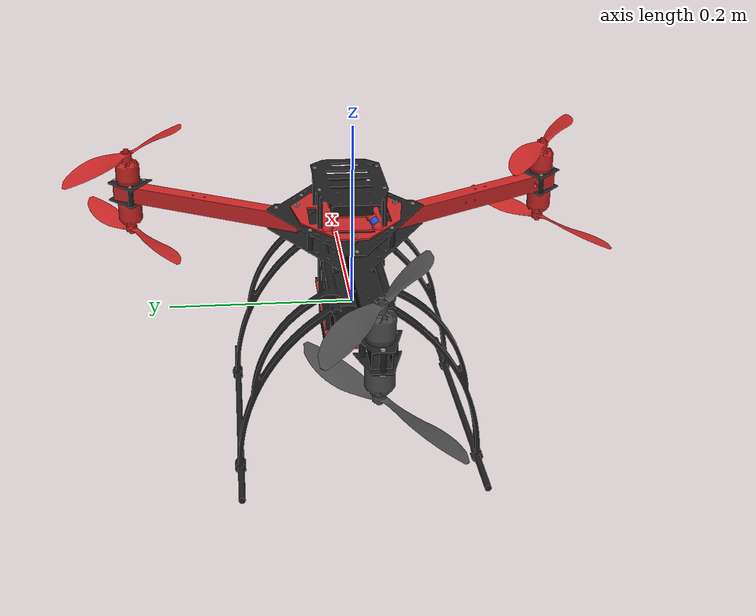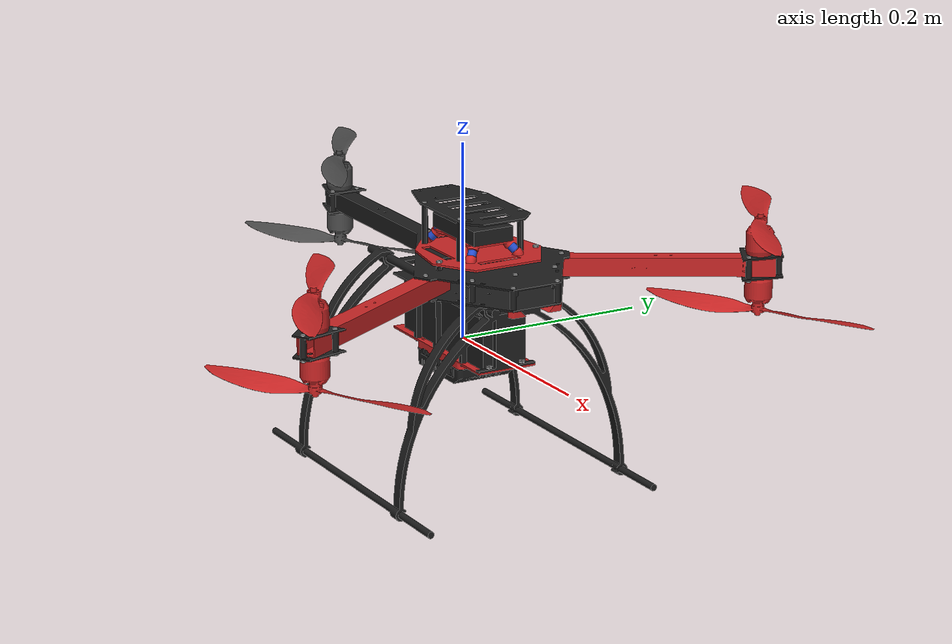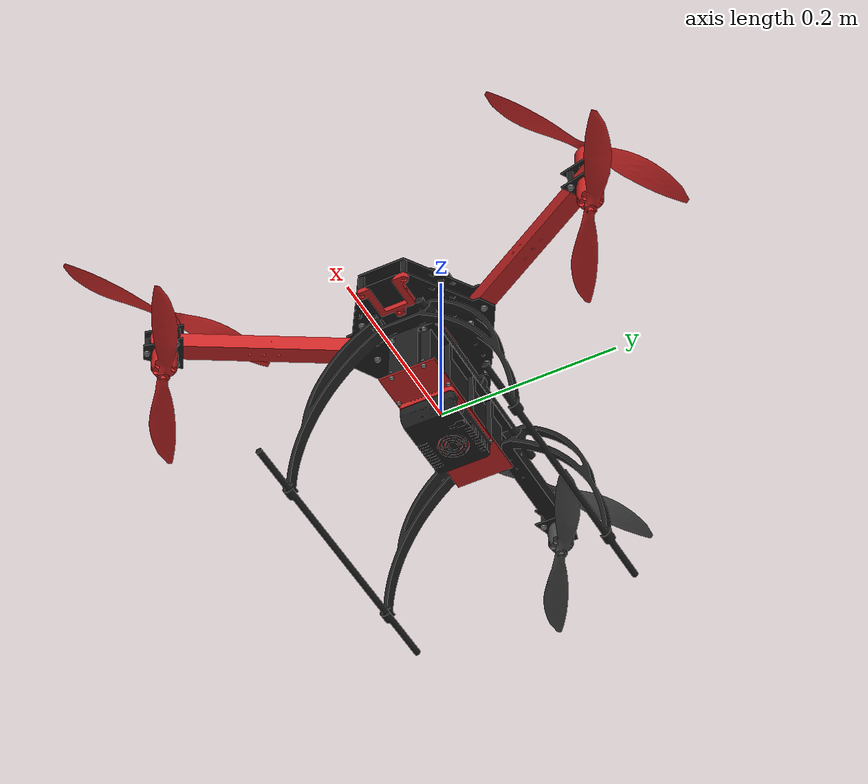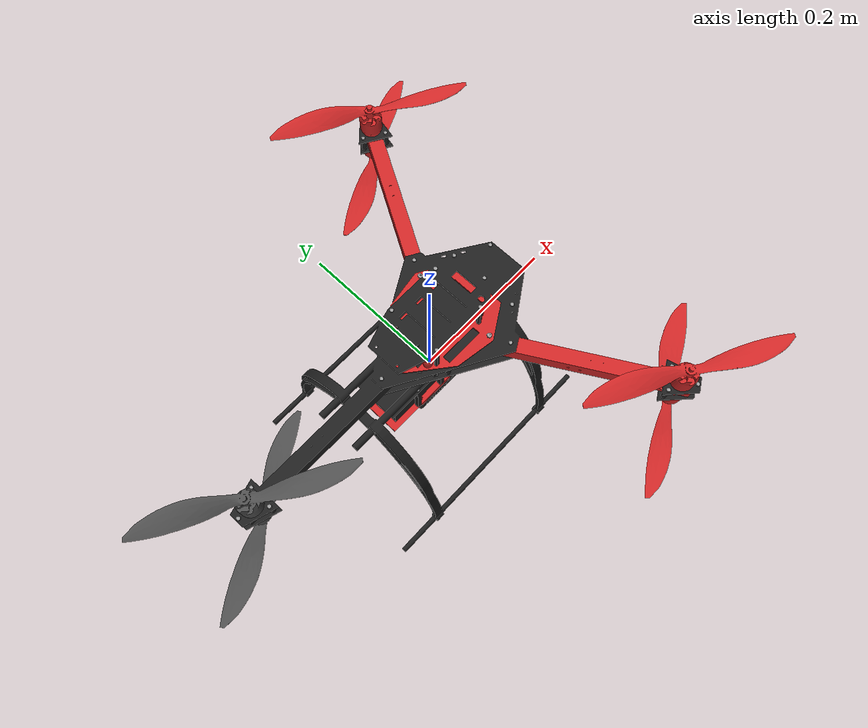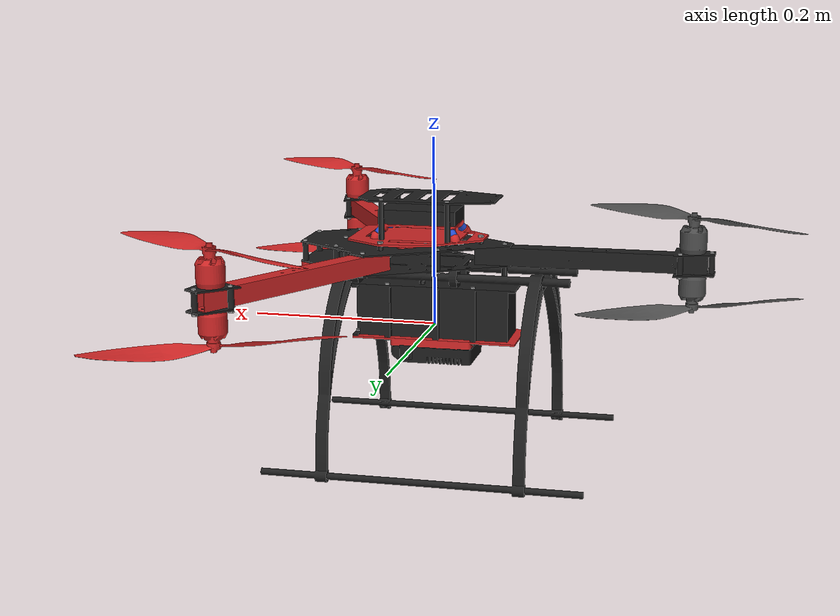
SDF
<sdf version='1.5'>
  <model name='y6'>
<!-- y6 main body -->
    <pose>0 0 0 0 0 0</pose>
    <link name='base_link'>
      <pose frame=''>0 0 0 0 -0 0</pose>
      <!-- Mass and Inertia of y6 -->
      <inertial>
        <pose frame=''>0 0 0 0 -0 0</pose>
        <mass>1.8</mass>
        <inertia>
          <ixx>0.018</ixx>
          <ixy>0</ixy>
          <ixz>0</ixz>
          <iyy>0.025</iyy>
          <iyz>0</iyz>
          <izz>0.033</izz>
        </inertia>
      </inertial>

      <collision name='base_link_inertia_collision'>
        <pose frame=''>0 0 0 0 -0 0</pose>
        <geometry>
          <box>
            <size>0.46859 0.5403 0.27945</size>
          </box>
        </geometry>
        <surface>
          <contact>
            <ode>
              <min_depth>0.001</min_depth>
              <max_vel>0</max_vel>
            </ode>
          </contact>
          <friction>
            <ode/>
          </friction>
        </surface>
      </collision>

      <visual name='base_link_main_body_visual'>
        <pose frame=''>-0.1 0 -0.139725 0 -0 -1.5708</pose>
        <geometry>
          <mesh>
            <scale>0.001 0.001 0.001</scale>
            <uri>model://y6/meshes/y6_black.stl</uri>
          </mesh>
        </geometry>
        <material>
          <script>
            <name>Gazebo/Black</name>
            <uri>file://media/materials/scripts/gazebo.material</uri>
          </script>
        </material>
      </visual>
      <gravity>1</gravity>
      <velocity_decay/>
      <self_collide>0</self_collide>

      <visual name='base_link_arms_visual'>
        <pose frame=''>-0.1 0 -0.139725 0 -0 -1.5708</pose>
        <geometry>
          <mesh>
            <scale>0.001 0.001 0.001</scale>
            <uri>model://y6/meshes/y6_red.stl</uri>
          </mesh>
        </geometry>
        <material>
          <script>
            <name>Gazebo/Red</name>
            <uri>file://media/materials/scripts/gazebo.material</uri>
          </script>
        </material>
      </visual>
      <gravity>1</gravity>
      <velocity_decay/>
      <self_collide>0</self_collide>

      <visual name='base_link_damper_visual'>
        <pose frame=''>-0.1 0 -0.139725 0 -0 -1.5708</pose>
        <geometry>
          <mesh>
            <scale>0.001 0.001 0.001</scale>
            <uri>model://y6/meshes/y6_blue.stl</uri>
          </mesh>
        </geometry>
        <material>
          <script>
            <name>Gazebo/Blue</name>
            <uri>file://media/materials/scripts/gazebo.material</uri>
          </script>
        </material>
      </visual>
      <gravity>1</gravity>
      <velocity_decay/>
      <self_collide>0</self_collide>

      <visual name='base_link_screws_visual'>
        <pose frame=''>-0.1 0 -0.139725 0 -0 -1.5708</pose>
        <geometry>
          <mesh>
            <scale>0.001 0.001 0.001</scale>
            <uri>model://y6/meshes/y6_gray.stl</uri>
          </mesh>
        </geometry>
        <material>
          <script>
            <name>Gazebo/Grey</name>
            <uri>file://media/materials/scripts/gazebo.material</uri>
          </script>
        </material>
      </visual>
      <gravity>1</gravity>
      <velocity_decay/>
      <self_collide>0</self_collide>
    </link>

<!-- y6 IMU link -->
    <link name='/imu_link'>
      <pose frame=''>0 0 0 0 -0 0</pose>
      <inertial>
        <pose frame=''>0 0 0 0 -0 0</pose>
        <mass>0.015</mass>
        <inertia>
          <ixx>1e-05</ixx>
          <ixy>0</ixy>
          <ixz>0</ixz>
          <iyy>1e-05</iyy>
          <iyz>0</iyz>
          <izz>1e-05</izz>
        </inertia>
      </inertial>
    </link>

    <joint name='/imu_joint' type='revolute'>
      <child>/imu_link</child>
      <parent>base_link</parent>
      <axis>
        <xyz>1 0 0</xyz>
        <limit>
          <lower>0</lower>
          <upper>0</upper>
          <effort>0</effort>
          <velocity>0</velocity>
        </limit>
        <dynamics>
          <spring_reference>0</spring_reference>
          <spring_stiffness>0</spring_stiffness>
        </dynamics>
        <use_parent_model_frame>1</use_parent_model_frame>
      </axis>
    </joint>

<!-- rotor#0 -->
    <link name='rotor_0'>
      <pose frame=''>0.154 -0.2429 0.119725 0 -0 0</pose>
      <inertial>
        <pose frame=''>0 0 0 0 -0 0</pose>
        <mass>0.005</mass>
        <inertia>
          <ixx>9.75e-07</ixx>
          <ixy>0</ixy>
          <ixz>0</ixz>
          <iyy>0.000273104</iyy>
          <iyz>0</iyz>
          <izz>0.000274004</izz>
        </inertia>
      </inertial>

      <collision name='rotor_0_collision'>
        <pose frame=''>0 0 0 0 -0 0</pose>
        <geometry>
          <cylinder>
            <length>0.005</length>
            <radius>0.128</radius>
          </cylinder>
        </geometry>
        <surface>
          <contact>
            <ode/>
          </contact>
          <friction>
            <ode/>
          </friction>
        </surface>
      </collision>

      <visual name='rotor_0_visual'>
        <pose frame=''>0 0 0 0 -0 0</pose>
        <geometry>
          <mesh>
            <scale>1 1 1</scale>
            <uri>model://y6/meshes/y6_propeller_top.dae</uri>
          </mesh>
        </geometry>
        <material>
          <script>
            <name>Gazebo/Red</name>
            <uri>file://media/materials/scripts/gazebo.material</uri>
          </script>
        </material>
      </visual>
      <gravity>1</gravity>
      <velocity_decay/>
      <self_collide>0</self_collide>
    </link>
    <joint name='rotor_0_joint' type='revolute'>
      <child>rotor_0</child>
      <parent>base_link</parent>
      <axis>
        <xyz>0 0 1</xyz>
        <limit>
          <lower>-1e+16</lower>
          <upper>1e+16</upper>
        </limit>
        <dynamics>
          <spring_reference>0</spring_reference>
          <spring_stiffness>0</spring_stiffness>
        </dynamics>
        <use_parent_model_frame>1</use_parent_model_frame>
      </axis>
    </joint>

<!-- rotor#1 -->
    <link name='rotor_1'>
      <pose frame=''>0.154 -0.2429 0.038975 0 -0 0</pose>
      <inertial>
        <pose frame=''>0 0 0 0 -0 0</pose>
        <mass>0.005</mass>
        <inertia>
          <ixx>9.75e-07</ixx>
          <ixy>0</ixy>
          <ixz>0</ixz>
          <iyy>0.000273104</iyy>
          <iyz>0</iyz>
          <izz>0.000274004</izz>
        </inertia>
      </inertial>

      <collision name='rotor_1_collision'>
        <pose frame=''>0 0 0 0 -0 0</pose>
        <geometry>
          <cylinder>
            <length>0.005</length>
            <radius>0.128</radius>
          </cylinder>
        </geometry>
        <surface>
          <contact>
            <ode/>
          </contact>
          <friction>
            <ode/>
          </friction>
        </surface>
      </collision>

      <visual name='rotor_1_visual'>
        <pose frame=''>0 0 0 0 -0 0</pose>
        <geometry>
          <mesh>
            <scale>1 1 1</scale>
            <uri>model://y6/meshes/y6_propeller_down.dae</uri>
          </mesh>
        </geometry>
        <material>
          <script>
            <name>Gazebo/Red</name>
            <uri>file://media/materials/scripts/gazebo.material</uri>
          </script>
        </material>
      </visual>
      <gravity>1</gravity>
      <velocity_decay/>
      <self_collide>0</self_collide>
    </link>
    <joint name='rotor_1_joint' type='revolute'>
      <child>rotor_1</child>
      <parent>base_link</parent>
      <axis>
        <xyz>0 0 1</xyz>
        <limit>
          <lower>-1e+16</lower>
          <upper>1e+16</upper>
        </limit>
        <dynamics>
          <spring_reference>0</spring_reference>
          <spring_stiffness>0</spring_stiffness>
        </dynamics>
        <use_parent_model_frame>1</use_parent_model_frame>
      </axis>
    </joint>

<!-- rotor#2 -->
    <link name='rotor_2'>
      <pose frame=''>-0.27175 0.003 0.119725 0 -0 0</pose>
      <inertial>
        <pose frame=''>0 0 0 0 -0 0</pose>
        <mass>0.005</mass>
        <inertia>
          <ixx>9.75e-07</ixx>
          <ixy>0</ixy>
          <ixz>0</ixz>
          <iyy>0.000273104</iyy>
          <iyz>0</iyz>
          <izz>0.000274004</izz>
        </inertia>
      </inertial>

      <collision name='rotor_2_collision'>
        <pose frame=''>0 0 0 0 -0 0</pose>
        <geometry>
          <cylinder>
            <length>0.005</length>
            <radius>0.128</radius>
          </cylinder>
        </geometry>
        <surface>
          <contact>
            <ode/>
          </contact>
          <friction>
            <ode/>
          </friction>
        </surface>
      </collision>

      <visual name='rotor_2_visual'>
        <pose frame=''>0 0 0 0 -0 0</pose>
        <geometry>
          <mesh>
            <scale>1 1 1</scale>
            <uri>model://y6/meshes/y6_propeller_top.dae</uri>
          </mesh>
        </geometry>
        <material>
          <script>
            <name>Gazebo/DarkGrey</name>
            <uri>file://media/materials/scripts/gazebo.material</uri>
          </script>
        </material>
      </visual>
      <gravity>1</gravity>
      <velocity_decay/>
      <self_collide>0</self_collide>
    </link>

    <joint name='rotor_2_joint' type='revolute'>
      <child>rotor_2</child>
      <parent>base_link</parent>
      <axis>
        <xyz>0 0 1</xyz>
        <limit>
          <lower>-1e+16</lower>
          <upper>1e+16</upper>
        </limit>
        <dynamics>
          <spring_reference>0</spring_reference>
          <spring_stiffness>0</spring_stiffness>
        </dynamics>
        <use_parent_model_frame>1</use_parent_model_frame>
      </axis>
    </joint>

<!-- rotor#3 -->
    <link name='rotor_3'>
      <pose frame=''>-0.27175 0.003 0.038975 0 -0 0</pose>
      <inertial>
        <pose frame=''>0 0 0 0 -0 0</pose>
        <mass>0.005</mass>
        <inertia>
          <ixx>9.75e-07</ixx>
          <ixy>0</ixy>
          <ixz>0</ixz>
          <iyy>0.000273104</iyy>
          <iyz>0</iyz>
          <izz>0.000274004</izz>
        </inertia>
      </inertial>

      <collision name='rotor_3_collision'>
        <pose frame=''>0 0 0 0 -0 0</pose>
        <geometry>
          <cylinder>
            <length>0.005</length>
            <radius>0.128</radius>
          </cylinder>
        </geometry>
        <surface>
          <contact>
            <ode/>
          </contact>
          <friction>
            <ode/>
          </friction>
        </surface>
      </collision>

      <visual name='rotor_3_visual'>
        <pose frame=''>0 0 0 0 -0 0</pose>
        <geometry>
          <mesh>
            <scale>1 1 1</scale>
            <uri>model://y6/meshes/y6_propeller_down.dae</uri>
          </mesh>
        </geometry>
        <material>
          <script>
            <name>Gazebo/DarkGrey</name>
            <uri>file://media/materials/scripts/gazebo.material</uri>
          </script>
        </material>
      </visual>
      <gravity>1</gravity>
      <velocity_decay/>
      <self_collide>0</self_collide>
    </link>

    <joint name='rotor_3_joint' type='revolute'>
      <child>rotor_3</child>
      <parent>base_link</parent>
      <axis>
        <xyz>0 0 1</xyz>
        <limit>
          <lower>-1e+16</lower>
          <upper>1e+16</upper>
        </limit>
        <dynamics>
          <spring_reference>0</spring_reference>
          <spring_stiffness>0</spring_stiffness>
        </dynamics>
        <use_parent_model_frame>1</use_parent_model_frame>
      </axis>
    </joint>

<!-- rotor#4 -->
    <link name='rotor_4'>
      <pose frame=''>0.154 0.2489 0.119725 0 -0 0</pose>
      <inertial>
        <pose frame=''>0 0 0 0 -0 0</pose>
        <mass>0.005</mass>
        <inertia>
          <ixx>9.75e-07</ixx>
          <ixy>0</ixy>
          <ixz>0</ixz>
          <iyy>0.000273104</iyy>
          <iyz>0</iyz>
          <izz>0.000274004</izz>
        </inertia>
      </inertial>

      <collision name='rotor_4_collision'>
        <pose frame=''>0 0 0 0 -0 0</pose>
        <geometry>
          <cylinder>
            <length>0.005</length>
            <radius>0.128</radius>
          </cylinder>
        </geometry>
        <surface>
          <contact>
            <ode/>
          </contact>
          <friction>
            <ode/>
          </friction>
        </surface>
      </collision>

      <visual name='rotor_4_visual'>
        <pose frame=''>0 0 0 0 -0 0</pose>
        <geometry>
          <mesh>
            <scale>1 1 1</scale>
            <uri>model://y6/meshes/y6_propeller_top.dae</uri>
          </mesh>
        </geometry>
        <material>
          <script>
            <name>Gazebo/Red</name>
            <uri>file://media/materials/scripts/gazebo.material</uri>
          </script>
        </material>
      </visual>
      <gravity>1</gravity>
      <velocity_decay/>
      <self_collide>0</self_collide>
    </link>

    <joint name='rotor_4_joint' type='revolute'>
      <child>rotor_4</child>
      <parent>base_link</parent>
      <axis>
        <xyz>0 0 1</xyz>
        <limit>
          <lower>-1e+16</lower>
          <upper>1e+16</upper>
        </limit>
        <dynamics>
          <spring_reference>0</spring_reference>
          <spring_stiffness>0</spring_stiffness>
        </dynamics>
        <use_parent_model_frame>1</use_parent_model_frame>
      </axis>
    </joint>

<!-- rotor#5 -->
    <link name='rotor_5'>
      <pose frame=''>0.154 0.2489 0.038975 0 -0 0</pose>
      <inertial>
        <pose frame=''>0 0 0 0 -0 0</pose>
        <mass>0.005</mass>
        <inertia>
          <ixx>9.75e-07</ixx>
          <ixy>0</ixy>
          <ixz>0</ixz>
          <iyy>0.000273104</iyy>
          <iyz>0</iyz>
          <izz>0.000274004</izz>
        </inertia>
      </inertial>

      <collision name='rotor_5_collision'>
        <pose frame=''>0 0 0 0 -0 0</pose>
        <geometry>
          <cylinder>
            <length>0.005</length>
            <radius>0.128</radius>
          </cylinder>
        </geometry>
        <surface>
          <contact>
            <ode/>
          </contact>
          <friction>
            <ode/>
          </friction>
        </surface>
      </collision>

      <visual name='rotor_5_visual'>
        <pose frame=''>0 0 0 0 -0 0</pose>
        <geometry>
          <mesh>
            <scale>1 1 1</scale>
            <uri>model://y6/meshes/y6_propeller_down.dae</uri>
          </mesh>
        </geometry>
        <material>
          <script>
            <name>Gazebo/Red</name>
            <uri>file://media/materials/scripts/gazebo.material</uri>
          </script>
        </material>
      </visual>
      <gravity>1</gravity>
      <velocity_decay/>
      <self_collide>0</self_collide>
    </link>

    <joint name='rotor_5_joint' type='revolute'>
      <child>rotor_5</child>
      <parent>base_link</parent>
      <axis>
        <xyz>0 0 1</xyz>
        <limit>
          <lower>-1e+16</lower>
          <upper>1e+16</upper>
        </limit>
        <dynamics>
          <spring_reference>0</spring_reference>
          <spring_stiffness>0</spring_stiffness>
        </dynamics>
        <use_parent_model_frame>1</use_parent_model_frame>
      </axis>
    </joint>

    <plugin name='rosbag' filename='librotors_gazebo_multirotor_base_plugin.so'>
      <robotNamespace>y6</robotNamespace>
      <linkName>base_link</linkName>
      <rotorVelocitySlowdownSim>10</rotorVelocitySlowdownSim>
    </plugin>

    <plugin name='front_right_top_motor_model' filename='librotors_gazebo_motor_model.so'>
      <robotNamespace>y6</robotNamespace>
      <jointName>rotor_0_joint</jointName>
      <linkName>rotor_0</linkName>
      <turningDirection>cw</turningDirection>
      <timeConstantUp>0.0125</timeConstantUp>
      <timeConstantDown>0.025</timeConstantDown>
      <maxRotVelocity>1500</maxRotVelocity>
      <motorConstant>8.54858e-06</motorConstant>
      <momentConstant>0.06</momentConstant>
      <commandSubTopic>/gazebo/command/motor_speed</commandSubTopic>
      <motorNumber>0</motorNumber>
      <rotorDragCoefficient>0.000806428</rotorDragCoefficient>
      <rollingMomentCoefficient>1e-06</rollingMomentCoefficient>
      <motorSpeedPubTopic>/motor_speed/0</motorSpeedPubTopic>
      <rotorVelocitySlowdownSim>10</rotorVelocitySlowdownSim>
    </plugin>

    <plugin name='front_right_bottom_motor_model' filename='librotors_gazebo_motor_model.so'>
      <robotNamespace>y6</robotNamespace>
      <jointName>rotor_1_joint</jointName>
      <linkName>rotor_1</linkName>
      <turningDirection>ccw</turningDirection>
      <timeConstantUp>0.0125</timeConstantUp>
      <timeConstantDown>0.025</timeConstantDown>
      <maxRotVelocity>1100</maxRotVelocity>
      <motorConstant>8.54858e-06</motorConstant>
      <momentConstant>0.06</momentConstant>
      <commandSubTopic>/gazebo/command/motor_speed</commandSubTopic>
      <motorNumber>1</motorNumber>
      <rotorDragCoefficient>0.000806428</rotorDragCoefficient>
      <rollingMomentCoefficient>1e-06</rollingMomentCoefficient>
      <motorSpeedPubTopic>/motor_speed/1</motorSpeedPubTopic>
      <rotorVelocitySlowdownSim>10</rotorVelocitySlowdownSim>
    </plugin>

    <plugin name='back_top_motor_model' filename='librotors_gazebo_motor_model.so'>
      <robotNamespace>y6</robotNamespace>
      <jointName>rotor_2_joint</jointName>
      <linkName>rotor_2</linkName>
      <turningDirection>cw</turningDirection>
      <timeConstantUp>0.0125</timeConstantUp>
      <timeConstantDown>0.025</timeConstantDown>
      <maxRotVelocity>1100</maxRotVelocity>
      <motorConstant>8.54858e-06</motorConstant>
      <momentConstant>0.06</momentConstant>
      <commandSubTopic>/gazebo/command/motor_speed</commandSubTopic>
      <motorNumber>2</motorNumber>
      <rotorDragCoefficient>0.000806428</rotorDragCoefficient>
      <rollingMomentCoefficient>1e-06</rollingMomentCoefficient>
      <motorSpeedPubTopic>/motor_speed/2</motorSpeedPubTopic>
      <rotorVelocitySlowdownSim>10</rotorVelocitySlowdownSim>
    </plugin>

    <plugin name='back_bottom_motor_model' filename='librotors_gazebo_motor_model.so'>
      <robotNamespace>y6</robotNamespace>
      <jointName>rotor_3_joint</jointName>
      <linkName>rotor_3</linkName>
      <turningDirection>ccw</turningDirection>
      <timeConstantUp>0.0125</timeConstantUp>
      <timeConstantDown>0.025</timeConstantDown>
      <maxRotVelocity>1100</maxRotVelocity>
      <motorConstant>8.54858e-06</motorConstant>
      <momentConstant>0.06</momentConstant>
      <commandSubTopic>/gazebo/command/motor_speed</commandSubTopic>
      <motorNumber>3</motorNumber>
      <rotorDragCoefficient>0.000806428</rotorDragCoefficient>
      <rollingMomentCoefficient>1e-06</rollingMomentCoefficient>
      <motorSpeedPubTopic>/motor_speed/3</motorSpeedPubTopic>
      <rotorVelocitySlowdownSim>10</rotorVelocitySlowdownSim>
    </plugin>

    <plugin name='front_left_top_motor_model' filename='librotors_gazebo_motor_model.so'>
      <robotNamespace>y6</robotNamespace>
      <jointName>rotor_4_joint</jointName>
      <linkName>rotor_4</linkName>
      <turningDirection>cw</turningDirection>
      <timeConstantUp>0.0125</timeConstantUp>
      <timeConstantDown>0.025</timeConstantDown>
      <maxRotVelocity>1100</maxRotVelocity>
      <motorConstant>8.54858e-06</motorConstant>
      <momentConstant>0.06</momentConstant>
      <commandSubTopic>/gazebo/command/motor_speed</commandSubTopic>
      <motorNumber>4</motorNumber>
      <rotorDragCoefficient>0.000806428</rotorDragCoefficient>
      <rollingMomentCoefficient>1e-06</rollingMomentCoefficient>
      <motorSpeedPubTopic>/motor_speed/4</motorSpeedPubTopic>
      <rotorVelocitySlowdownSim>10</rotorVelocitySlowdownSim>
    </plugin>

    <plugin name='front_left_bottom_motor_model' filename='librotors_gazebo_motor_model.so'>
      <robotNamespace>y6</robotNamespace>
      <jointName>rotor_5_joint</jointName>
      <linkName>rotor_5</linkName>
      <turningDirection>ccw</turningDirection>
      <timeConstantUp>0.0125</timeConstantUp>
      <timeConstantDown>0.025</timeConstantDown>
      <maxRotVelocity>1100</maxRotVelocity>
      <motorConstant>8.54858e-06</motorConstant>
      <momentConstant>0.06</momentConstant>
      <commandSubTopic>/gazebo/command/motor_speed</commandSubTopic>
      <motorNumber>5</motorNumber>
      <rotorDragCoefficient>0.000806428</rotorDragCoefficient>
      <rollingMomentCoefficient>1e-06</rollingMomentCoefficient>
      <motorSpeedPubTopic>/motor_speed/5</motorSpeedPubTopic>
      <rotorVelocitySlowdownSim>10</rotorVelocitySlowdownSim>
    </plugin>

    <plugin name='mavlink_interface' filename='librotors_gazebo_mavlink_interface.so'>
      <robotNamespace>y6</robotNamespace>
      <imuSubTopic>/imu</imuSubTopic>
      <mavlink_addr>INADDR_ANY</mavlink_addr>
      <mavlink_udp_port>14560</mavlink_udp_port>
      <motorSpeedCommandPubTopic>/gazebo/command/motor_speed</motorSpeedCommandPubTopic>

      <control_channels>
        <channel name='rotor0'>
          <input_index>0</input_index>
          <input_offset>0</input_offset>
          <input_scaling>1500</input_scaling>
          <zero_position_disarmed>0</zero_position_disarmed>
          <zero_position_armed>100</zero_position_armed>
          <joint_control_type>velocity</joint_control_type>
          <joint_name>rotor_0_joint</joint_name>
        </channel>
        <channel name='rotor1'>
          <input_index>1</input_index>
          <input_offset>0</input_offset>
          <input_scaling>1500</input_scaling>
          <zero_position_disarmed>0</zero_position_disarmed>
          <zero_position_armed>100</zero_position_armed>
          <joint_control_type>velocity</joint_control_type>
          <joint_name>rotor_1_joint</joint_name>
        </channel>
        <channel name='rotor2'>
          <input_index>2</input_index>
          <input_offset>0</input_offset>
          <input_scaling>1500</input_scaling>
          <zero_position_disarmed>0</zero_position_disarmed>
          <zero_position_armed>100</zero_position_armed>
          <joint_control_type>velocity</joint_control_type>
          <joint_name>rotor_2_joint</joint_name>
        </channel>
        <channel name='rotor3'>
          <input_index>3</input_index>
          <input_offset>0</input_offset>
          <input_scaling>1500</input_scaling>
          <zero_position_disarmed>0</zero_position_disarmed>
          <zero_position_armed>100</zero_position_armed>
          <joint_control_type>velocity</joint_control_type>
          <joint_name>rotor_3_joint</joint_name>
        </channel>
        <channel name='rotor4'>
          <input_index>4</input_index>
          <input_offset>0</input_offset>
          <input_scaling>1500</input_scaling>
          <zero_position_disarmed>0</zero_position_disarmed>
          <zero_position_armed>100</zero_position_armed>
          <joint_control_type>velocity</joint_control_type>
          <joint_name>rotor_4_joint</joint_name>
        </channel>
        <channel name='rotor5'>
          <input_index>5</input_index>
          <input_offset>0</input_offset>
          <input_scaling>1500</input_scaling>
          <zero_position_disarmed>0</zero_position_disarmed>
          <zero_position_armed>100</zero_position_armed>
          <joint_control_type>velocity</joint_control_type>
          <joint_name>rotor_5_joint</joint_name>
        </channel>
      </control_channels>
    </plugin>

    <static>0</static>

    <plugin name='rotors_gazebo_imu_plugin' filename='librotors_gazebo_imu_plugin.so'>
      <robotNamespace>y6</robotNamespace>
      <linkName>/imu_link</linkName>
      <imuTopic>/imu</imuTopic>
      <gyroscopeNoiseDensity>0.0003394</gyroscopeNoiseDensity>
      <gyroscopeRandomWalk>3.8785e-05</gyroscopeRandomWalk>
      <gyroscopeBiasCorrelationTime>1000.0</gyroscopeBiasCorrelationTime>
      <gyroscopeTurnOnBiasSigma>0.0087</gyroscopeTurnOnBiasSigma>
      <accelerometerNoiseDensity>0.004</accelerometerNoiseDensity>
      <accelerometerRandomWalk>0.006</accelerometerRandomWalk>
      <accelerometerBiasCorrelationTime>300.0</accelerometerBiasCorrelationTime>
      <accelerometerTurnOnBiasSigma>0.196</accelerometerTurnOnBiasSigma>
    </plugin>

    <plugin name='gazebo_motor_failure_plugin' filename='libgazebo_motor_failure_plugin.so'>
      <ROSMotorNumSubTopic>/motor_failure/motor_number</ROSMotorNumSubTopic>
      <MotorFailureNumPubTopic>/gazebo/motor_failure_num</MotorFailureNumPubTopic>
    </plugin>

  </model>
</sdf>
